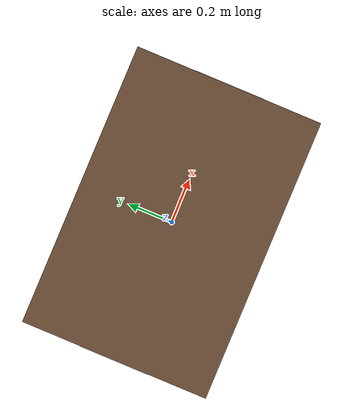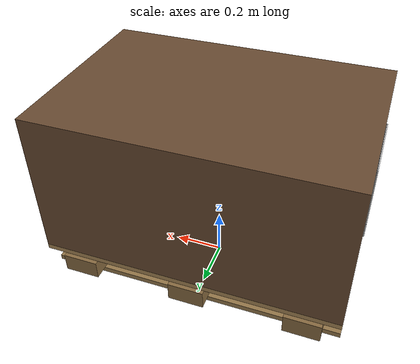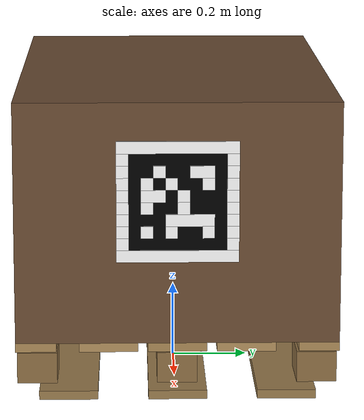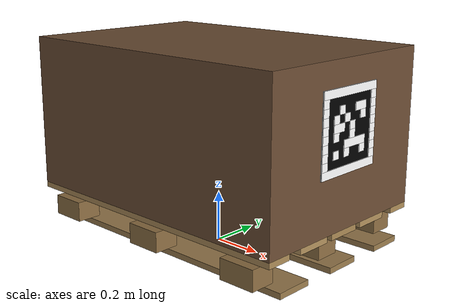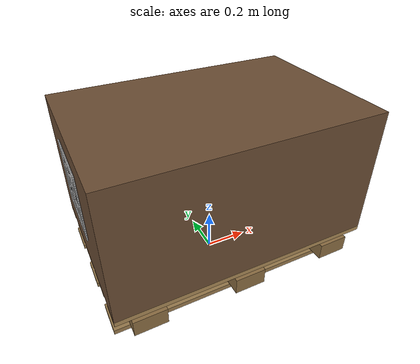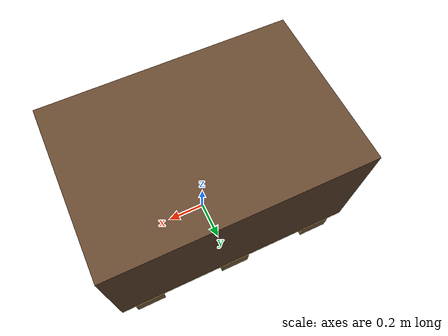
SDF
<?xml version="1.0"?>
<sdf version="1.9">
  <model name="euro_pallet_tag36h11_14">
    <pose>0 0 0 0 0 0</pose>
    <static>false</static>
    <self_collide>false</self_collide>
    <allow_auto_disable>false</allow_auto_disable>

    <link name="pallet_link">
      <pose>0 0 0.06 0 0 0</pose>
      <inertial>
        <pose>0 0 0.072 0 0 0</pose>
        <mass>25.0</mass>
        <inertia>
          <ixx>1.38</ixx>
          <iyy>3.04</iyy>
          <izz>4.33</izz>
          <ixy>0.0</ixy>
          <ixz>0.0</ixz>
          <iyz>0.0</iyz>
        </inertia>
      </inertial>

      <collision name="top_board_outer_left_collision">
        <pose>0 -0.35 0.133 0 0 0</pose>
        <geometry>
          <box>
            <size>1.2 0.10 0.022</size>
          </box>
        </geometry>
      </collision>
      <collision name="top_board_inner_left_collision">
        <pose>0 -0.17 0.133 0 0 0</pose>
        <geometry>
          <box>
            <size>1.2 0.145 0.022</size>
          </box>
        </geometry>
      </collision>
      <collision name="top_board_center_collision">
        <pose>0 0 0.133 0 0 0</pose>
        <geometry>
          <box>
            <size>1.2 0.145 0.022</size>
          </box>
        </geometry>
      </collision>
      <collision name="top_board_inner_right_collision">
        <pose>0 0.17 0.133 0 0 0</pose>
        <geometry>
          <box>
            <size>1.2 0.145 0.022</size>
          </box>
        </geometry>
      </collision>
      <collision name="top_board_outer_right_collision">
        <pose>0 0.35 0.133 0 0 0</pose>
        <geometry>
          <box>
            <size>1.2 0.10 0.022</size>
          </box>
        </geometry>
      </collision>

      <collision name="bottom_board_left_collision">
        <pose>0 -0.34 0.011 0 0 0</pose>
        <geometry>
          <box>
            <size>1.2 0.10 0.022</size>
          </box>
        </geometry>
        <surface>
          <friction>
            <ode>
              <mu>1.2</mu>
              <mu2>1.2</mu2>
              <slip1>0.0</slip1>
              <slip2>0.0</slip2>
            </ode>
            <bullet>
              <friction>1.2</friction>
              <friction2>1.2</friction2>
            </bullet>
          </friction>
        </surface>
      </collision>
      <collision name="bottom_board_center_collision">
        <pose>0 0 0.011 0 0 0</pose>
        <geometry>
          <box>
            <size>1.2 0.10 0.022</size>
          </box>
        </geometry>
        <surface>
          <friction>
            <ode>
              <mu>1.2</mu>
              <mu2>1.2</mu2>
              <slip1>0.0</slip1>
              <slip2>0.0</slip2>
            </ode>
            <bullet>
              <friction>1.2</friction>
              <friction2>1.2</friction2>
            </bullet>
          </friction>
        </surface>
      </collision>
      <collision name="bottom_board_right_collision">
        <pose>0 0.34 0.011 0 0 0</pose>
        <geometry>
          <box>
            <size>1.2 0.10 0.022</size>
          </box>
        </geometry>
        <surface>
          <friction>
            <ode>
              <mu>1.2</mu>
              <mu2>1.2</mu2>
              <slip1>0.0</slip1>
              <slip2>0.0</slip2>
            </ode>
            <bullet>
              <friction>1.2</friction>
              <friction2>1.2</friction2>
            </bullet>
          </friction>
        </surface>
      </collision>

      <collision name="block_1_collision">
        <pose>-0.46 -0.35 0.061 0 0 0</pose>
        <geometry>
          <box>
            <size>0.145 0.10 0.078</size>
          </box>
        </geometry>
      </collision>
      <collision name="block_2_collision">
        <pose>0 -0.35 0.061 0 0 0</pose>
        <geometry>
          <box>
            <size>0.145 0.10 0.078</size>
          </box>
        </geometry>
      </collision>
      <collision name="block_3_collision">
        <pose>0.46 -0.35 0.061 0 0 0</pose>
        <geometry>
          <box>
            <size>0.145 0.10 0.078</size>
          </box>
        </geometry>
      </collision>
      <collision name="block_4_collision">
        <pose>-0.46 0 0.061 0 0 0</pose>
        <geometry>
          <box>
            <size>0.145 0.10 0.078</size>
          </box>
        </geometry>
      </collision>
      <collision name="block_5_collision">
        <pose>0 0 0.061 0 0 0</pose>
        <geometry>
          <box>
            <size>0.145 0.10 0.078</size>
          </box>
        </geometry>
      </collision>
      <collision name="block_6_collision">
        <pose>0.46 0 0.061 0 0 0</pose>
        <geometry>
          <box>
            <size>0.145 0.10 0.078</size>
          </box>
        </geometry>
      </collision>
      <collision name="block_7_collision">
        <pose>-0.46 0.35 0.061 0 0 0</pose>
        <geometry>
          <box>
            <size>0.145 0.10 0.078</size>
          </box>
        </geometry>
      </collision>
      <collision name="block_8_collision">
        <pose>0 0.35 0.061 0 0 0</pose>
        <geometry>
          <box>
            <size>0.145 0.10 0.078</size>
          </box>
        </geometry>
      </collision>
      <collision name="block_9_collision">
        <pose>0.46 0.35 0.061 0 0 0</pose>
        <geometry>
          <box>
            <size>0.145 0.10 0.078</size>
          </box>
        </geometry>
      </collision>
      <collision name="marker_box_collision">
        <pose>0 0 0.444 0 0 0</pose>
        <geometry>
          <box>
            <size>1.2 0.8 0.60</size>
          </box>
        </geometry>
      </collision>

      <visual name="top_board_outer_left">
        <pose>0 -0.35 0.133 0 0 0</pose>
        <geometry>
          <box>
            <size>1.2 0.10 0.022</size>
          </box>
        </geometry>
        <material>
          <ambient>0.67 0.54 0.34 1.0</ambient>
          <diffuse>0.67 0.54 0.34 1.0</diffuse>
        </material>
      </visual>
      <visual name="top_board_inner_left">
        <pose>0 -0.17 0.133 0 0 0</pose>
        <geometry>
          <box>
            <size>1.2 0.145 0.022</size>
          </box>
        </geometry>
        <material>
          <ambient>0.69 0.56 0.36 1.0</ambient>
          <diffuse>0.69 0.56 0.36 1.0</diffuse>
        </material>
      </visual>
      <visual name="top_board_center">
        <pose>0 0 0.133 0 0 0</pose>
        <geometry>
          <box>
            <size>1.2 0.145 0.022</size>
          </box>
        </geometry>
        <material>
          <ambient>0.66 0.53 0.33 1.0</ambient>
          <diffuse>0.66 0.53 0.33 1.0</diffuse>
        </material>
      </visual>
      <visual name="top_board_inner_right">
        <pose>0 0.17 0.133 0 0 0</pose>
        <geometry>
          <box>
            <size>1.2 0.145 0.022</size>
          </box>
        </geometry>
        <material>
          <ambient>0.69 0.56 0.36 1.0</ambient>
          <diffuse>0.69 0.56 0.36 1.0</diffuse>
        </material>
      </visual>
      <visual name="top_board_outer_right">
        <pose>0 0.35 0.133 0 0 0</pose>
        <geometry>
          <box>
            <size>1.2 0.10 0.022</size>
          </box>
        </geometry>
        <material>
          <ambient>0.67 0.54 0.34 1.0</ambient>
          <diffuse>0.67 0.54 0.34 1.0</diffuse>
        </material>
      </visual>

      <visual name="bottom_board_left">
        <pose>0 -0.27 0.011 0 0 0</pose>
        <geometry>
          <box>
            <size>1.2 0.145 0.022</size>
          </box>
        </geometry>
        <material>
          <ambient>0.60 0.48 0.30 1.0</ambient>
          <diffuse>0.60 0.48 0.30 1.0</diffuse>
        </material>
      </visual>
      <visual name="bottom_board_center">
        <pose>0 0 0.011 0 0 0</pose>
        <geometry>
          <box>
            <size>1.2 0.145 0.022</size>
          </box>
        </geometry>
        <material>
          <ambient>0.60 0.48 0.30 1.0</ambient>
          <diffuse>0.60 0.48 0.30 1.0</diffuse>
        </material>
      </visual>
      <visual name="bottom_board_right">
        <pose>0 0.27 0.011 0 0 0</pose>
        <geometry>
          <box>
            <size>1.2 0.145 0.022</size>
          </box>
        </geometry>
        <material>
          <ambient>0.60 0.48 0.30 1.0</ambient>
          <diffuse>0.60 0.48 0.30 1.0</diffuse>
        </material>
      </visual>

      <visual name="block_1">
        <pose>-0.46 -0.35 0.061 0 0 0</pose>
        <geometry>
          <box>
            <size>0.145 0.10 0.078</size>
          </box>
        </geometry>
        <material>
          <ambient>0.55 0.43 0.26 1.0</ambient>
          <diffuse>0.55 0.43 0.26 1.0</diffuse>
        </material>
      </visual>
      <visual name="block_2">
        <pose>0 -0.35 0.061 0 0 0</pose>
        <geometry>
          <box>
            <size>0.145 0.10 0.078</size>
          </box>
        </geometry>
        <material>
          <ambient>0.55 0.43 0.26 1.0</ambient>
          <diffuse>0.55 0.43 0.26 1.0</diffuse>
        </material>
      </visual>
      <visual name="block_3">
        <pose>0.46 -0.35 0.061 0 0 0</pose>
        <geometry>
          <box>
            <size>0.145 0.10 0.078</size>
          </box>
        </geometry>
        <material>
          <ambient>0.55 0.43 0.26 1.0</ambient>
          <diffuse>0.55 0.43 0.26 1.0</diffuse>
        </material>
      </visual>
      <visual name="block_4">
        <pose>-0.46 0 0.061 0 0 0</pose>
        <geometry>
          <box>
            <size>0.145 0.10 0.078</size>
          </box>
        </geometry>
        <material>
          <ambient>0.55 0.43 0.26 1.0</ambient>
          <diffuse>0.55 0.43 0.26 1.0</diffuse>
        </material>
      </visual>
      <visual name="block_5">
        <pose>0 0 0.061 0 0 0</pose>
        <geometry>
          <box>
            <size>0.145 0.10 0.078</size>
          </box>
        </geometry>
        <material>
          <ambient>0.55 0.43 0.26 1.0</ambient>
          <diffuse>0.55 0.43 0.26 1.0</diffuse>
        </material>
      </visual>
      <visual name="block_6">
        <pose>0.46 0 0.061 0 0 0</pose>
        <geometry>
          <box>
            <size>0.145 0.10 0.078</size>
          </box>
        </geometry>
        <material>
          <ambient>0.55 0.43 0.26 1.0</ambient>
          <diffuse>0.55 0.43 0.26 1.0</diffuse>
        </material>
      </visual>
      <visual name="block_7">
        <pose>-0.46 0.35 0.061 0 0 0</pose>
        <geometry>
          <box>
            <size>0.145 0.10 0.078</size>
          </box>
        </geometry>
        <material>
          <ambient>0.55 0.43 0.26 1.0</ambient>
          <diffuse>0.55 0.43 0.26 1.0</diffuse>
        </material>
      </visual>
      <visual name="block_8">
        <pose>0 0.35 0.061 0 0 0</pose>
        <geometry>
          <box>
            <size>0.145 0.10 0.078</size>
          </box>
        </geometry>
        <material>
          <ambient>0.55 0.43 0.26 1.0</ambient>
          <diffuse>0.55 0.43 0.26 1.0</diffuse>
        </material>
      </visual>
      <visual name="block_9">
        <pose>0.46 0.35 0.061 0 0 0</pose>
        <geometry>
          <box>
            <size>0.145 0.10 0.078</size>
          </box>
        </geometry>
        <material>
          <ambient>0.55 0.43 0.26 1.0</ambient>
          <diffuse>0.55 0.43 0.26 1.0</diffuse>
        </material>
      </visual>
      <visual name="apriltag_front_black_plate">
        <pose>0.602 0 0.500 0 0 0</pose>
        <geometry>
          <box>
            <size>0.002 0.300 0.300</size>
          </box>
        </geometry>
        <material>
          <ambient>0 0 0 1</ambient>
          <diffuse>0 0 0 1</diffuse>
          <specular>0 0 0 1</specular>
        </material>
      </visual>
      <visual name="apriltag_front_white_r00_00_09">
        <pose>0.605 0.000 0.635 0 0 0</pose>
        <geometry>
          <box>
            <size>0.003 0.300 0.030</size>
          </box>
        </geometry>
        <material>
          <ambient>1 1 1 1</ambient>
          <diffuse>1 1 1 1</diffuse>
          <specular>0.05 0.05 0.05 1</specular>
        </material>
      </visual>
      <visual name="apriltag_front_white_r01_00_00">
        <pose>0.605 -0.135 0.605 0 0 0</pose>
        <geometry>
          <box>
            <size>0.003 0.030 0.030</size>
          </box>
        </geometry>
        <material>
          <ambient>1 1 1 1</ambient>
          <diffuse>1 1 1 1</diffuse>
          <specular>0.05 0.05 0.05 1</specular>
        </material>
      </visual>
      <visual name="apriltag_front_white_r01_09_09">
        <pose>0.605 0.135 0.605 0 0 0</pose>
        <geometry>
          <box>
            <size>0.003 0.030 0.030</size>
          </box>
        </geometry>
        <material>
          <ambient>1 1 1 1</ambient>
          <diffuse>1 1 1 1</diffuse>
          <specular>0.05 0.05 0.05 1</specular>
        </material>
      </visual>
      <visual name="apriltag_front_white_r02_00_00">
        <pose>0.605 -0.135 0.575 0 0 0</pose>
        <geometry>
          <box>
            <size>0.003 0.030 0.030</size>
          </box>
        </geometry>
        <material>
          <ambient>1 1 1 1</ambient>
          <diffuse>1 1 1 1</diffuse>
          <specular>0.05 0.05 0.05 1</specular>
        </material>
      </visual>
      <visual name="apriltag_front_white_r02_03_03">
        <pose>0.605 -0.045 0.575 0 0 0</pose>
        <geometry>
          <box>
            <size>0.003 0.030 0.030</size>
          </box>
        </geometry>
        <material>
          <ambient>1 1 1 1</ambient>
          <diffuse>1 1 1 1</diffuse>
          <specular>0.05 0.05 0.05 1</specular>
        </material>
      </visual>
      <visual name="apriltag_front_white_r02_06_07">
        <pose>0.605 0.060 0.575 0 0 0</pose>
        <geometry>
          <box>
            <size>0.003 0.060 0.030</size>
          </box>
        </geometry>
        <material>
          <ambient>1 1 1 1</ambient>
          <diffuse>1 1 1 1</diffuse>
          <specular>0.05 0.05 0.05 1</specular>
        </material>
      </visual>
      <visual name="apriltag_front_white_r02_09_09">
        <pose>0.605 0.135 0.575 0 0 0</pose>
        <geometry>
          <box>
            <size>0.003 0.030 0.030</size>
          </box>
        </geometry>
        <material>
          <ambient>1 1 1 1</ambient>
          <diffuse>1 1 1 1</diffuse>
          <specular>0.05 0.05 0.05 1</specular>
        </material>
      </visual>
      <visual name="apriltag_front_white_r03_00_00">
        <pose>0.605 -0.135 0.545 0 0 0</pose>
        <geometry>
          <box>
            <size>0.003 0.030 0.030</size>
          </box>
        </geometry>
        <material>
          <ambient>1 1 1 1</ambient>
          <diffuse>1 1 1 1</diffuse>
          <specular>0.05 0.05 0.05 1</specular>
        </material>
      </visual>
      <visual name="apriltag_front_white_r03_02_02">
        <pose>0.605 -0.075 0.545 0 0 0</pose>
        <geometry>
          <box>
            <size>0.003 0.030 0.030</size>
          </box>
        </geometry>
        <material>
          <ambient>1 1 1 1</ambient>
          <diffuse>1 1 1 1</diffuse>
          <specular>0.05 0.05 0.05 1</specular>
        </material>
      </visual>
      <visual name="apriltag_front_white_r03_04_04">
        <pose>0.605 -0.015 0.545 0 0 0</pose>
        <geometry>
          <box>
            <size>0.003 0.030 0.030</size>
          </box>
        </geometry>
        <material>
          <ambient>1 1 1 1</ambient>
          <diffuse>1 1 1 1</diffuse>
          <specular>0.05 0.05 0.05 1</specular>
        </material>
      </visual>
      <visual name="apriltag_front_white_r03_07_07">
        <pose>0.605 0.075 0.545 0 0 0</pose>
        <geometry>
          <box>
            <size>0.003 0.030 0.030</size>
          </box>
        </geometry>
        <material>
          <ambient>1 1 1 1</ambient>
          <diffuse>1 1 1 1</diffuse>
          <specular>0.05 0.05 0.05 1</specular>
        </material>
      </visual>
      <visual name="apriltag_front_white_r03_09_09">
        <pose>0.605 0.135 0.545 0 0 0</pose>
        <geometry>
          <box>
            <size>0.003 0.030 0.030</size>
          </box>
        </geometry>
        <material>
          <ambient>1 1 1 1</ambient>
          <diffuse>1 1 1 1</diffuse>
          <specular>0.05 0.05 0.05 1</specular>
        </material>
      </visual>
      <visual name="apriltag_front_white_r04_00_00">
        <pose>0.605 -0.135 0.515 0 0 0</pose>
        <geometry>
          <box>
            <size>0.003 0.030 0.030</size>
          </box>
        </geometry>
        <material>
          <ambient>1 1 1 1</ambient>
          <diffuse>1 1 1 1</diffuse>
          <specular>0.05 0.05 0.05 1</specular>
        </material>
      </visual>
      <visual name="apriltag_front_white_r04_02_03">
        <pose>0.605 -0.060 0.515 0 0 0</pose>
        <geometry>
          <box>
            <size>0.003 0.060 0.030</size>
          </box>
        </geometry>
        <material>
          <ambient>1 1 1 1</ambient>
          <diffuse>1 1 1 1</diffuse>
          <specular>0.05 0.05 0.05 1</specular>
        </material>
      </visual>
      <visual name="apriltag_front_white_r04_05_05">
        <pose>0.605 0.015 0.515 0 0 0</pose>
        <geometry>
          <box>
            <size>0.003 0.030 0.030</size>
          </box>
        </geometry>
        <material>
          <ambient>1 1 1 1</ambient>
          <diffuse>1 1 1 1</diffuse>
          <specular>0.05 0.05 0.05 1</specular>
        </material>
      </visual>
      <visual name="apriltag_front_white_r04_09_09">
        <pose>0.605 0.135 0.515 0 0 0</pose>
        <geometry>
          <box>
            <size>0.003 0.030 0.030</size>
          </box>
        </geometry>
        <material>
          <ambient>1 1 1 1</ambient>
          <diffuse>1 1 1 1</diffuse>
          <specular>0.05 0.05 0.05 1</specular>
        </material>
      </visual>
      <visual name="apriltag_front_white_r05_00_00">
        <pose>0.605 -0.135 0.485 0 0 0</pose>
        <geometry>
          <box>
            <size>0.003 0.030 0.030</size>
          </box>
        </geometry>
        <material>
          <ambient>1 1 1 1</ambient>
          <diffuse>1 1 1 1</diffuse>
          <specular>0.05 0.05 0.05 1</specular>
        </material>
      </visual>
      <visual name="apriltag_front_white_r05_02_02">
        <pose>0.605 -0.075 0.485 0 0 0</pose>
        <geometry>
          <box>
            <size>0.003 0.030 0.030</size>
          </box>
        </geometry>
        <material>
          <ambient>1 1 1 1</ambient>
          <diffuse>1 1 1 1</diffuse>
          <specular>0.05 0.05 0.05 1</specular>
        </material>
      </visual>
      <visual name="apriltag_front_white_r05_05_05">
        <pose>0.605 0.015 0.485 0 0 0</pose>
        <geometry>
          <box>
            <size>0.003 0.030 0.030</size>
          </box>
        </geometry>
        <material>
          <ambient>1 1 1 1</ambient>
          <diffuse>1 1 1 1</diffuse>
          <specular>0.05 0.05 0.05 1</specular>
        </material>
      </visual>
      <visual name="apriltag_front_white_r05_09_09">
        <pose>0.605 0.135 0.485 0 0 0</pose>
        <geometry>
          <box>
            <size>0.003 0.030 0.030</size>
          </box>
        </geometry>
        <material>
          <ambient>1 1 1 1</ambient>
          <diffuse>1 1 1 1</diffuse>
          <specular>0.05 0.05 0.05 1</specular>
        </material>
      </visual>
      <visual name="apriltag_front_white_r06_00_00">
        <pose>0.605 -0.135 0.455 0 0 0</pose>
        <geometry>
          <box>
            <size>0.003 0.030 0.030</size>
          </box>
        </geometry>
        <material>
          <ambient>1 1 1 1</ambient>
          <diffuse>1 1 1 1</diffuse>
          <specular>0.05 0.05 0.05 1</specular>
        </material>
      </visual>
      <visual name="apriltag_front_white_r06_04_07">
        <pose>0.605 0.030 0.455 0 0 0</pose>
        <geometry>
          <box>
            <size>0.003 0.120 0.030</size>
          </box>
        </geometry>
        <material>
          <ambient>1 1 1 1</ambient>
          <diffuse>1 1 1 1</diffuse>
          <specular>0.05 0.05 0.05 1</specular>
        </material>
      </visual>
      <visual name="apriltag_front_white_r06_09_09">
        <pose>0.605 0.135 0.455 0 0 0</pose>
        <geometry>
          <box>
            <size>0.003 0.030 0.030</size>
          </box>
        </geometry>
        <material>
          <ambient>1 1 1 1</ambient>
          <diffuse>1 1 1 1</diffuse>
          <specular>0.05 0.05 0.05 1</specular>
        </material>
      </visual>
      <visual name="apriltag_front_white_r07_00_00">
        <pose>0.605 -0.135 0.425 0 0 0</pose>
        <geometry>
          <box>
            <size>0.003 0.030 0.030</size>
          </box>
        </geometry>
        <material>
          <ambient>1 1 1 1</ambient>
          <diffuse>1 1 1 1</diffuse>
          <specular>0.05 0.05 0.05 1</specular>
        </material>
      </visual>
      <visual name="apriltag_front_white_r07_02_02">
        <pose>0.605 -0.075 0.425 0 0 0</pose>
        <geometry>
          <box>
            <size>0.003 0.030 0.030</size>
          </box>
        </geometry>
        <material>
          <ambient>1 1 1 1</ambient>
          <diffuse>1 1 1 1</diffuse>
          <specular>0.05 0.05 0.05 1</specular>
        </material>
      </visual>
      <visual name="apriltag_front_white_r07_04_04">
        <pose>0.605 -0.015 0.425 0 0 0</pose>
        <geometry>
          <box>
            <size>0.003 0.030 0.030</size>
          </box>
        </geometry>
        <material>
          <ambient>1 1 1 1</ambient>
          <diffuse>1 1 1 1</diffuse>
          <specular>0.05 0.05 0.05 1</specular>
        </material>
      </visual>
      <visual name="apriltag_front_white_r07_07_07">
        <pose>0.605 0.075 0.425 0 0 0</pose>
        <geometry>
          <box>
            <size>0.003 0.030 0.030</size>
          </box>
        </geometry>
        <material>
          <ambient>1 1 1 1</ambient>
          <diffuse>1 1 1 1</diffuse>
          <specular>0.05 0.05 0.05 1</specular>
        </material>
      </visual>
      <visual name="apriltag_front_white_r07_09_09">
        <pose>0.605 0.135 0.425 0 0 0</pose>
        <geometry>
          <box>
            <size>0.003 0.030 0.030</size>
          </box>
        </geometry>
        <material>
          <ambient>1 1 1 1</ambient>
          <diffuse>1 1 1 1</diffuse>
          <specular>0.05 0.05 0.05 1</specular>
        </material>
      </visual>
      <visual name="apriltag_front_white_r08_00_00">
        <pose>0.605 -0.135 0.395 0 0 0</pose>
        <geometry>
          <box>
            <size>0.003 0.030 0.030</size>
          </box>
        </geometry>
        <material>
          <ambient>1 1 1 1</ambient>
          <diffuse>1 1 1 1</diffuse>
          <specular>0.05 0.05 0.05 1</specular>
        </material>
      </visual>
      <visual name="apriltag_front_white_r08_09_09">
        <pose>0.605 0.135 0.395 0 0 0</pose>
        <geometry>
          <box>
            <size>0.003 0.030 0.030</size>
          </box>
        </geometry>
        <material>
          <ambient>1 1 1 1</ambient>
          <diffuse>1 1 1 1</diffuse>
          <specular>0.05 0.05 0.05 1</specular>
        </material>
      </visual>
      <visual name="apriltag_front_white_r09_00_09">
        <pose>0.605 0.000 0.365 0 0 0</pose>
        <geometry>
          <box>
            <size>0.003 0.300 0.030</size>
          </box>
        </geometry>
        <material>
          <ambient>1 1 1 1</ambient>
          <diffuse>1 1 1 1</diffuse>
          <specular>0.05 0.05 0.05 1</specular>
        </material>
      </visual>
      <visual name="apriltag_back_black_plate">
        <pose>-0.602 0 0.500 0 0 0</pose>
        <geometry>
          <box>
            <size>0.002 0.300 0.300</size>
          </box>
        </geometry>
        <material>
          <ambient>0 0 0 1</ambient>
          <diffuse>0 0 0 1</diffuse>
          <specular>0 0 0 1</specular>
        </material>
      </visual>
      <visual name="apriltag_back_white_r00_00_09">
        <pose>-0.605 -0.000 0.635 0 0 0</pose>
        <geometry>
          <box>
            <size>0.003 0.300 0.030</size>
          </box>
        </geometry>
        <material>
          <ambient>1 1 1 1</ambient>
          <diffuse>1 1 1 1</diffuse>
          <specular>0.05 0.05 0.05 1</specular>
        </material>
      </visual>
      <visual name="apriltag_back_white_r01_00_00">
        <pose>-0.605 0.135 0.605 0 0 0</pose>
        <geometry>
          <box>
            <size>0.003 0.030 0.030</size>
          </box>
        </geometry>
        <material>
          <ambient>1 1 1 1</ambient>
          <diffuse>1 1 1 1</diffuse>
          <specular>0.05 0.05 0.05 1</specular>
        </material>
      </visual>
      <visual name="apriltag_back_white_r01_09_09">
        <pose>-0.605 -0.135 0.605 0 0 0</pose>
        <geometry>
          <box>
            <size>0.003 0.030 0.030</size>
          </box>
        </geometry>
        <material>
          <ambient>1 1 1 1</ambient>
          <diffuse>1 1 1 1</diffuse>
          <specular>0.05 0.05 0.05 1</specular>
        </material>
      </visual>
      <visual name="apriltag_back_white_r02_00_00">
        <pose>-0.605 0.135 0.575 0 0 0</pose>
        <geometry>
          <box>
            <size>0.003 0.030 0.030</size>
          </box>
        </geometry>
        <material>
          <ambient>1 1 1 1</ambient>
          <diffuse>1 1 1 1</diffuse>
          <specular>0.05 0.05 0.05 1</specular>
        </material>
      </visual>
      <visual name="apriltag_back_white_r02_03_03">
        <pose>-0.605 0.045 0.575 0 0 0</pose>
        <geometry>
          <box>
            <size>0.003 0.030 0.030</size>
          </box>
        </geometry>
        <material>
          <ambient>1 1 1 1</ambient>
          <diffuse>1 1 1 1</diffuse>
          <specular>0.05 0.05 0.05 1</specular>
        </material>
      </visual>
      <visual name="apriltag_back_white_r02_06_07">
        <pose>-0.605 -0.060 0.575 0 0 0</pose>
        <geometry>
          <box>
            <size>0.003 0.060 0.030</size>
          </box>
        </geometry>
        <material>
          <ambient>1 1 1 1</ambient>
          <diffuse>1 1 1 1</diffuse>
          <specular>0.05 0.05 0.05 1</specular>
        </material>
      </visual>
      <visual name="apriltag_back_white_r02_09_09">
        <pose>-0.605 -0.135 0.575 0 0 0</pose>
        <geometry>
          <box>
            <size>0.003 0.030 0.030</size>
          </box>
        </geometry>
        <material>
          <ambient>1 1 1 1</ambient>
          <diffuse>1 1 1 1</diffuse>
          <specular>0.05 0.05 0.05 1</specular>
        </material>
      </visual>
      <visual name="apriltag_back_white_r03_00_00">
        <pose>-0.605 0.135 0.545 0 0 0</pose>
        <geometry>
          <box>
            <size>0.003 0.030 0.030</size>
          </box>
        </geometry>
        <material>
          <ambient>1 1 1 1</ambient>
          <diffuse>1 1 1 1</diffuse>
          <specular>0.05 0.05 0.05 1</specular>
        </material>
      </visual>
      <visual name="apriltag_back_white_r03_02_02">
        <pose>-0.605 0.075 0.545 0 0 0</pose>
        <geometry>
          <box>
            <size>0.003 0.030 0.030</size>
          </box>
        </geometry>
        <material>
          <ambient>1 1 1 1</ambient>
          <diffuse>1 1 1 1</diffuse>
          <specular>0.05 0.05 0.05 1</specular>
        </material>
      </visual>
      <visual name="apriltag_back_white_r03_04_04">
        <pose>-0.605 0.015 0.545 0 0 0</pose>
        <geometry>
          <box>
            <size>0.003 0.030 0.030</size>
          </box>
        </geometry>
        <material>
          <ambient>1 1 1 1</ambient>
          <diffuse>1 1 1 1</diffuse>
          <specular>0.05 0.05 0.05 1</specular>
        </material>
      </visual>
      <visual name="apriltag_back_white_r03_07_07">
        <pose>-0.605 -0.075 0.545 0 0 0</pose>
        <geometry>
          <box>
            <size>0.003 0.030 0.030</size>
          </box>
        </geometry>
        <material>
          <ambient>1 1 1 1</ambient>
          <diffuse>1 1 1 1</diffuse>
          <specular>0.05 0.05 0.05 1</specular>
        </material>
      </visual>
      <visual name="apriltag_back_white_r03_09_09">
        <pose>-0.605 -0.135 0.545 0 0 0</pose>
        <geometry>
          <box>
            <size>0.003 0.030 0.030</size>
          </box>
        </geometry>
        <material>
          <ambient>1 1 1 1</ambient>
          <diffuse>1 1 1 1</diffuse>
          <specular>0.05 0.05 0.05 1</specular>
        </material>
      </visual>
      <visual name="apriltag_back_white_r04_00_00">
        <pose>-0.605 0.135 0.515 0 0 0</pose>
        <geometry>
          <box>
            <size>0.003 0.030 0.030</size>
          </box>
        </geometry>
        <material>
          <ambient>1 1 1 1</ambient>
          <diffuse>1 1 1 1</diffuse>
          <specular>0.05 0.05 0.05 1</specular>
        </material>
      </visual>
      <visual name="apriltag_back_white_r04_02_03">
        <pose>-0.605 0.060 0.515 0 0 0</pose>
        <geometry>
          <box>
            <size>0.003 0.060 0.030</size>
          </box>
        </geometry>
        <material>
          <ambient>1 1 1 1</ambient>
          <diffuse>1 1 1 1</diffuse>
          <specular>0.05 0.05 0.05 1</specular>
        </material>
      </visual>
      <visual name="apriltag_back_white_r04_05_05">
        <pose>-0.605 -0.015 0.515 0 0 0</pose>
        <geometry>
          <box>
            <size>0.003 0.030 0.030</size>
          </box>
        </geometry>
        <material>
          <ambient>1 1 1 1</ambient>
          <diffuse>1 1 1 1</diffuse>
          <specular>0.05 0.05 0.05 1</specular>
        </material>
      </visual>
      <visual name="apriltag_back_white_r04_09_09">
        <pose>-0.605 -0.135 0.515 0 0 0</pose>
        <geometry>
          <box>
            <size>0.003 0.030 0.030</size>
          </box>
        </geometry>
        <material>
          <ambient>1 1 1 1</ambient>
          <diffuse>1 1 1 1</diffuse>
          <specular>0.05 0.05 0.05 1</specular>
        </material>
      </visual>
      <visual name="apriltag_back_white_r05_00_00">
        <pose>-0.605 0.135 0.485 0 0 0</pose>
        <geometry>
          <box>
            <size>0.003 0.030 0.030</size>
          </box>
        </geometry>
        <material>
          <ambient>1 1 1 1</ambient>
          <diffuse>1 1 1 1</diffuse>
          <specular>0.05 0.05 0.05 1</specular>
        </material>
      </visual>
      <visual name="apriltag_back_white_r05_02_02">
        <pose>-0.605 0.075 0.485 0 0 0</pose>
        <geometry>
          <box>
            <size>0.003 0.030 0.030</size>
          </box>
        </geometry>
        <material>
          <ambient>1 1 1 1</ambient>
          <diffuse>1 1 1 1</diffuse>
          <specular>0.05 0.05 0.05 1</specular>
        </material>
      </visual>
      <visual name="apriltag_back_white_r05_05_05">
        <pose>-0.605 -0.015 0.485 0 0 0</pose>
        <geometry>
          <box>
            <size>0.003 0.030 0.030</size>
          </box>
        </geometry>
        <material>
          <ambient>1 1 1 1</ambient>
          <diffuse>1 1 1 1</diffuse>
          <specular>0.05 0.05 0.05 1</specular>
        </material>
      </visual>
      <visual name="apriltag_back_white_r05_09_09">
        <pose>-0.605 -0.135 0.485 0 0 0</pose>
        <geometry>
          <box>
            <size>0.003 0.030 0.030</size>
          </box>
        </geometry>
        <material>
          <ambient>1 1 1 1</ambient>
          <diffuse>1 1 1 1</diffuse>
          <specular>0.05 0.05 0.05 1</specular>
        </material>
      </visual>
      <visual name="apriltag_back_white_r06_00_00">
        <pose>-0.605 0.135 0.455 0 0 0</pose>
        <geometry>
          <box>
            <size>0.003 0.030 0.030</size>
          </box>
        </geometry>
        <material>
          <ambient>1 1 1 1</ambient>
          <diffuse>1 1 1 1</diffuse>
          <specular>0.05 0.05 0.05 1</specular>
        </material>
      </visual>
      <visual name="apriltag_back_white_r06_04_07">
        <pose>-0.605 -0.030 0.455 0 0 0</pose>
        <geometry>
          <box>
            <size>0.003 0.120 0.030</size>
          </box>
        </geometry>
        <material>
          <ambient>1 1 1 1</ambient>
          <diffuse>1 1 1 1</diffuse>
          <specular>0.05 0.05 0.05 1</specular>
        </material>
      </visual>
      <visual name="apriltag_back_white_r06_09_09">
        <pose>-0.605 -0.135 0.455 0 0 0</pose>
        <geometry>
          <box>
            <size>0.003 0.030 0.030</size>
          </box>
        </geometry>
        <material>
          <ambient>1 1 1 1</ambient>
          <diffuse>1 1 1 1</diffuse>
          <specular>0.05 0.05 0.05 1</specular>
        </material>
      </visual>
      <visual name="apriltag_back_white_r07_00_00">
        <pose>-0.605 0.135 0.425 0 0 0</pose>
        <geometry>
          <box>
            <size>0.003 0.030 0.030</size>
          </box>
        </geometry>
        <material>
          <ambient>1 1 1 1</ambient>
          <diffuse>1 1 1 1</diffuse>
          <specular>0.05 0.05 0.05 1</specular>
        </material>
      </visual>
      <visual name="apriltag_back_white_r07_02_02">
        <pose>-0.605 0.075 0.425 0 0 0</pose>
        <geometry>
          <box>
            <size>0.003 0.030 0.030</size>
          </box>
        </geometry>
        <material>
          <ambient>1 1 1 1</ambient>
          <diffuse>1 1 1 1</diffuse>
          <specular>0.05 0.05 0.05 1</specular>
        </material>
      </visual>
      <visual name="apriltag_back_white_r07_04_04">
        <pose>-0.605 0.015 0.425 0 0 0</pose>
        <geometry>
          <box>
            <size>0.003 0.030 0.030</size>
          </box>
        </geometry>
        <material>
          <ambient>1 1 1 1</ambient>
          <diffuse>1 1 1 1</diffuse>
          <specular>0.05 0.05 0.05 1</specular>
        </material>
      </visual>
      <visual name="apriltag_back_white_r07_07_07">
        <pose>-0.605 -0.075 0.425 0 0 0</pose>
        <geometry>
          <box>
            <size>0.003 0.030 0.030</size>
          </box>
        </geometry>
        <material>
          <ambient>1 1 1 1</ambient>
          <diffuse>1 1 1 1</diffuse>
          <specular>0.05 0.05 0.05 1</specular>
        </material>
      </visual>
      <visual name="apriltag_back_white_r07_09_09">
        <pose>-0.605 -0.135 0.425 0 0 0</pose>
        <geometry>
          <box>
            <size>0.003 0.030 0.030</size>
          </box>
        </geometry>
        <material>
          <ambient>1 1 1 1</ambient>
          <diffuse>1 1 1 1</diffuse>
          <specular>0.05 0.05 0.05 1</specular>
        </material>
      </visual>
      <visual name="apriltag_back_white_r08_00_00">
        <pose>-0.605 0.135 0.395 0 0 0</pose>
        <geometry>
          <box>
            <size>0.003 0.030 0.030</size>
          </box>
        </geometry>
        <material>
          <ambient>1 1 1 1</ambient>
          <diffuse>1 1 1 1</diffuse>
          <specular>0.05 0.05 0.05 1</specular>
        </material>
      </visual>
      <visual name="apriltag_back_white_r08_09_09">
        <pose>-0.605 -0.135 0.395 0 0 0</pose>
        <geometry>
          <box>
            <size>0.003 0.030 0.030</size>
          </box>
        </geometry>
        <material>
          <ambient>1 1 1 1</ambient>
          <diffuse>1 1 1 1</diffuse>
          <specular>0.05 0.05 0.05 1</specular>
        </material>
      </visual>
      <visual name="apriltag_back_white_r09_00_09">
        <pose>-0.605 -0.000 0.365 0 0 0</pose>
        <geometry>
          <box>
            <size>0.003 0.300 0.030</size>
          </box>
        </geometry>
        <material>
          <ambient>1 1 1 1</ambient>
          <diffuse>1 1 1 1</diffuse>
          <specular>0.05 0.05 0.05 1</specular>
        </material>
      </visual>
      <visual name="marker_box">
        <pose>0 0 0.444 0 0 0</pose>
        <geometry>
          <box>
            <size>1.2 0.8 0.60</size>
          </box>
        </geometry>
        <material>
          <ambient>0.35 0.24 0.16 1.0</ambient>
          <diffuse>0.42 0.30 0.20 1.0</diffuse>
          <specular>0.04 0.035 0.03 1.0</specular>
        </material>
      </visual>
    </link>
  </model>
</sdf>
